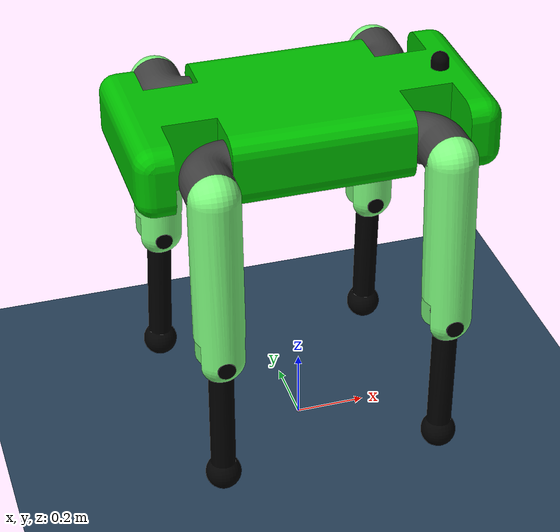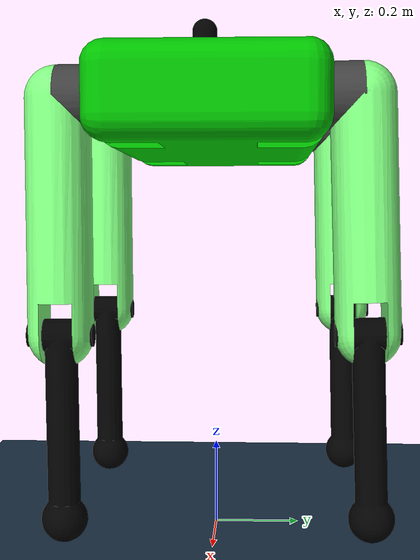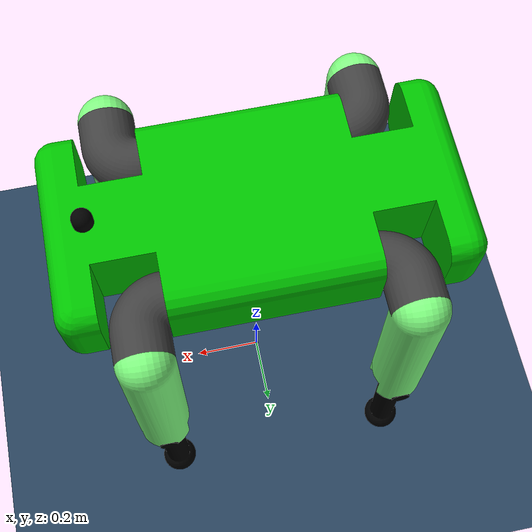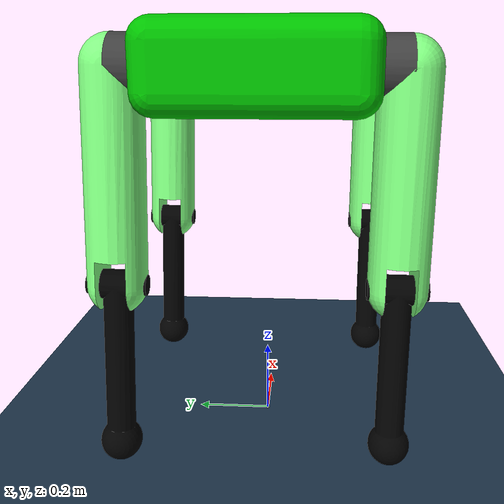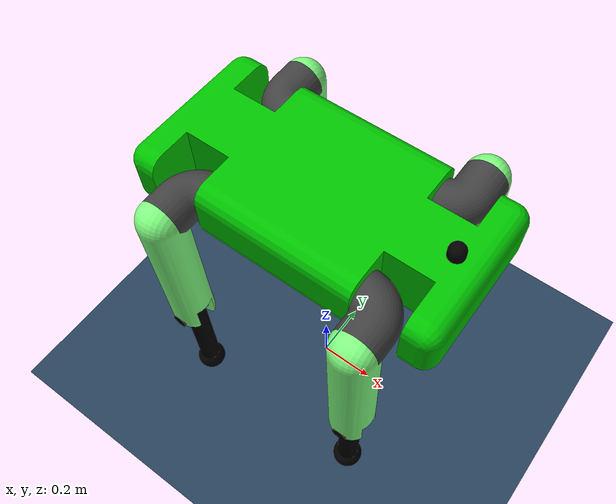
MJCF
<mujoco model="quad_robo">
  <option integrator="RK4" timestep="0.01" gravity="0 0 -9.8"/>
  <compiler angle="radian" meshdir="meshes" texturedir="meshes" autolimits="true"/>

  <statistic center="0 -0.1 0.2" extent="0.6" meansize="0.05"/>

  <visual>
    <headlight diffuse="0.6 0.6 0.6" ambient="0.3 0.3 0.3" specular="0 0 0"/>
    <rgba haze="0.15 0.25 0.35 1"/>
    <global azimuth="90" elevation="-20"/>
    <quality shadowsize="8192"/>
  </visual>

  <default>
     <default class="quadrobo">
      <mesh scale="1.0 1.0 1.0"/>
      <joint axis="0 1 0" frictionloss="0.1" armature="0.1"/>
      <position kp="150" inheritrange="1" dampratio="0.95" forcerange="-75 75"/>
      <default class="visual">
        <geom type="mesh" contype="0" conaffinity="0" density="0" group="2"/>
      </default>
      <default class="collision">
        <geom group="3" type="mesh"/>
        <default class="sphere_collision">
          <geom type="sphere" size="0.0006" rgba="1 0 0 1"/>
        </default>
      </default>
    </default>
  </default>

  <asset>
    <mesh class="quadrobo" name="body" file="body.STL" />
    <mesh class="quadrobo" name="camera" file="camera.STL" />
    <mesh class="quadrobo" name="back_right_thigh" file="back_right_thigh.STL" />
    <mesh class="quadrobo" name="back_right_leg" file="back_right_leg.STL" />
    <mesh class="quadrobo" name="back_right_shin" file="back_right_shin.STL" />
    <mesh class="quadrobo" name="back_left_thigh" file="back_left_thigh.STL" />
    <mesh class="quadrobo" name="back_left_leg" file="back_left_leg.STL" />
    <mesh class="quadrobo" name="back_left_shin" file="back_left_shin.STL" />
    <mesh class="quadrobo" name="front_left_thigh" file="front_left_thigh.STL" />
    <mesh class="quadrobo" name="front_left_leg" file="front_left_leg.STL" />
    <mesh class="quadrobo" name="front_left_shin" file="front_left_shin.STL" />
    <mesh class="quadrobo" name="front_right_thigh" file="front_right_thigh.STL" />
    <mesh class="quadrobo" name="front_right_leg" file="front_right_leg.STL" />
    <mesh class="quadrobo" name="front_right_shin" file="front_right_shin.STL" />

    <texture type="skybox" builtin="gradient" rgb1="0.3 0.5 0.7" rgb2="0 0 0" width="512" height="3072"/>
    <texture type="2d" name="groundplane" builtin="checker" mark="edge" rgb1="0.2 0.3 0.4" rgb2="0.1 0.2 0.3"
      markrgb="0.8 0.8 0.8" width="300" height="300"/>
    <material name="groundplane" texture="groundplane" texuniform="true" texrepeat="5 5" reflectance="0.2"/>
    <material name="metal" rgba="0.517 0.529 0.537 1"/>
  </asset>

  <worldbody>
    <light pos="0 0.1 2.5"/>
    <geom name="floor" size="20 20 0.05" type="plane" material="groundplane" pos="0 0 0"/>
    <site name="worldref" pos="0 0 0"/>
    <camera name="fixed" pos="0 -3.0 0.5" xyaxes="1 0 0 0 0 1" />
    <camera name="track" mode="trackcom" pos="0 -3.0 0.5" xyaxes="1 0 0 0 0 1" />
    <body name="root" pos="0 0 1.0" quat="1 0 0 0">
      <freejoint name="root" />
      <inertial pos="-1.46356336883091e-07 -3.51552591482118e-08 1.14116542881959e-08"
          mass="79.5537197619098"
          diaginertia="1.6409 6.2523 7.3877" />

      <site name="imu" size="0.01" pos="0 0 0" />
      <geom type="mesh" rgba="0 0.752941 0 1" mesh="body" class="visual" />
      <geom type="mesh" rgba="0 0.752941 0 1" mesh="body" class="collision"/>
      <geom pos="0.4 -0.005 0.095" quat="0.707107 0.707107 0 0" type="mesh" rgba="0 0 0 1" mesh="camera" class="visual" />
      <geom type="mesh" rgba="0 0 0 1" mesh="camera" pos="0.4 -0.005 0.095" quat="0.707107 0.707107 0 0" class="collision"/>
      <body name="back_right_thigh" pos="-0.24995 -0.18 0" quat="0 0 -0.709831 0.704372">
        <inertial pos="0.0629098 0 0.0554258" quat="0.993254 0 0.115957 0" mass="2.7702" diaginertia="0.0125596 0.0121647 0.00639203" />
        <joint name="back_right_thigh_joint" pos="0 0 0" axis="1 0 0" range="-1.57 1.57"  />
        <geom type="mesh" rgba="0.25098 0.25098 0.25098 1" mesh="back_right_thigh" class="visual" />
        <geom type="mesh" rgba="0.25098 0.25098 0.25098 1" mesh="back_right_thigh" class="collision"/>
        <body name="back_right_leg" pos="0.07005 0 0.070008" quat="-0.00392279 0.707097 0.00392277 0.707095">
          <inertial pos="0.0730353 -0.237418 6.51884e-09" quat="0.509262 0.490495 -0.509328 0.490563" mass="6.93817" diaginertia="0.145238 0.144942 0.0172124" />
          <joint name="back_right_leg_joint" pos="0 0 0" axis="1 0 0" range="-1.57 1.57"  />
          <geom type="mesh" rgba="0.501961 1 0.501961 1" mesh="back_right_leg" class="visual" />
          <geom type="mesh" rgba="0.501961 1 0.501961 1" mesh="back_right_leg" class="collision"/>
          <body name="back_right_shin" pos="0 -0.5 0" quat="0.00459773 0.999989 0 0">
            <inertial pos="0.0699917 0.206759 -2.45496e-07" quat="0.499992 0.499992 -0.500008 0.500008" mass="2.18909" diaginertia="0.0499442 0.0495545 0.00191161" />
            <joint name="back_right_shin_joint" pos="0 0 0" axis="1 0 0" range="-1.57 1.57"  />
            <geom type="mesh" rgba="0 0 0 1" mesh="back_right_shin" class="visual" />
            <geom type="mesh" rgba="0 0 0 1" mesh="back_right_shin" class="collision"/>
          </body>
        </body>
      </body>
      <body name="back_left_thigh" pos="-0.24995 0.18 0" quat="-2.62832e-06 -2.566e-06 0.698572 0.71554">
        <inertial pos="0.0629098 0 0.0554258" quat="0.993254 0 0.115957 0" mass="2.7702" diaginertia="0.0125596 0.0121647 0.00639203" />
        <joint name="back_left_thigh_joint" pos="0 0 0" axis="-1 0 0" range="-1.57 1.57"  />
        <geom type="mesh" rgba="0.25098 0.25098 0.25098 1" mesh="back_left_thigh" class="visual" />
        <geom type="mesh" rgba="0.25098 0.25098 0.25098 1" mesh="back_left_thigh" class="collision"/>
        <body name="back_left_leg" pos="0.07005 0 0.0700804" quat="0.707086 0.00546207 -0.707086 0.00546206">
          <inertial pos="0.0729632 -0.237418 -5.14056e-09" quat="0.509261 0.490494 -0.509329 0.490564" mass="6.93817" diaginertia="0.145238 0.144942 0.0172124" />
          <joint name="back_left_leg_joint" pos="0 0 0" axis="-1 0 0" range="-1.57 1.57"  />
          <geom type="mesh" rgba="0.501961 1 0.501961 1" mesh="back_left_leg" class="visual" />
          <geom type="mesh" rgba="0.501961 1 0.501961 1" mesh="back_left_leg" class="collision"/>
          <body name="back_left_shin" pos="0 -0.5 0" quat="0.00510775 -0.999987 0 0">
            <inertial pos="0.0699198 0.206759 2.62203e-07" quat="0.5 0.5 -0.5 0.5" mass="2.1891" diaginertia="0.0499443 0.0495545 0.00191162" />
            <joint name="back_left_shin_joint" pos="0 0 0" axis="-1 0 0" range="-1.57 1.57"  />
            <geom type="mesh" rgba="0 0 0 1" mesh="back_left_shin" class="visual" />
            <geom type="mesh" rgba="0 0 0 1" mesh="back_left_shin" class="collision"/>
          </body>
        </body>
      </body>
      <body name="front_left_thigh" pos="0.24995 0.18 0" quat="0.717563 -0.696494 0 0">
        <inertial pos="0.0629098 0 0.0554258" quat="0.993254 0 0.115957 0" mass="2.7702" diaginertia="0.0125596 0.0121647 0.00639203" />
        <joint name="front_left_thigh_joint" pos="0 0 0" axis="1 0 0" range="-1.57 1.57"  />
        <geom type="mesh" rgba="0.25098 0.25098 0.25098 1" mesh="front_left_thigh" class="visual" />
        <geom type="mesh" rgba="0.25098 0.25098 0.25098 1" mesh="front_left_thigh" class="collision"/>
        <body name="front_left_leg" pos="0.07005 0 0.0701239" quat="-0.00317285 -0.7071 0.00317286 -0.7071">
          <inertial pos="0.0729198 -0.237418 3.33459e-09" quat="0.509262 0.490495 -0.509328 0.490564" mass="6.93817" diaginertia="0.145238 0.144942 0.0172124" />
          <joint name="front_left_leg_joint" pos="0 0 0" axis="-1 0 0" range="-1.57 1.57"  />
          <geom type="mesh" rgba="0.501961 1 0.501961 1" mesh="front_left_leg" class="visual" />
          <geom type="mesh" rgba="0.501961 1 0.501961 1" mesh="front_left_leg" class="collision"/>
          <body name="front_left_shin" pos="0 -0.5 0" quat="0.0117301 -0.999931 0 0">
            <inertial pos="0.0698764 0.206759 1.34054e-07" quat="0.5 0.5 -0.5 0.5" mass="2.18909" diaginertia="0.0499442 0.0495545 0.00191161" />
            <joint name="front_left_shin_joint" pos="0 0 0" axis="-1 0 0" range="-1.57 1.57"  />
            <geom type="mesh" rgba="0 0 0 1" mesh="front_left_shin" class="visual" />
            <geom type="mesh" rgba="0 0 0 1" mesh="front_left_shin" class="collision"/>
          </body>
        </body>
      </body>
      <body name="front_right_thigh" pos="0.24995 -0.18 0" quat="0.705082 0.709126 0 0">
        <inertial pos="0.0629098 0 0.0554258" quat="0.993254 0 0.115957 0" mass="2.7702" diaginertia="0.0125596 0.0121647 0.00639203" />
        <joint name="front_right_thigh_joint" pos="0 0 0" axis="-1 0 0" range="-1.57 1.57"  />
        <geom type="mesh" rgba="0.25098 0.25098 0.25098 1" mesh="front_right_thigh" class="visual" />
        <geom type="mesh" rgba="0.25098 0.25098 0.25098 1" mesh="front_right_thigh" class="collision"/>
        <body name="front_right_leg" pos="0.07005 0 0.0700046" quat="0.707082 0.00589294 -0.707082 0.00589293">
          <inertial pos="0.073039 -0.237418 -3.69308e-09" quat="0.509261 0.490494 -0.509328 0.490564" mass="6.93817" diaginertia="0.145238 0.144942 0.0172124" />
          <joint name="front_right_leg_joint" pos="0 0 0" axis="1 0 0" range="-1.57 1.57"  />
          <geom type="mesh" rgba="0.501961 1 0.501961 1" mesh="front_right_leg" class="visual" />
          <geom type="mesh" rgba="0.501961 1 0.501961 1" mesh="front_right_leg" class="collision"/>
          <body name="front_right_shin" pos="0 -0.5 0" quat="0.0155385 0.999879 0 0">
            <inertial pos="0.0699954 0.206759 -1.74081e-07" quat="0.499992 0.499992 -0.500008 0.500008" mass="2.18909" diaginertia="0.0499442 0.0495545 0.00191161" />
            <joint name="front_right_shin_joint" pos="0 0 0" axis="1 0 0" range="-1.57 1.57"  />
            <geom type="mesh" rgba="0 0 0 1" mesh="front_right_shin" class="visual" />
            <geom type="mesh" rgba="0 0 0 1" mesh="front_right_shin" class="collision"/>
          </body>
        </body>
      </body>
    </body>
  </worldbody>

  <actuator>
    <position class="quadrobo" name="back_right_thigh_joint" joint="back_right_thigh_joint"  />
    <position class="quadrobo" name="back_right_leg_joint" joint="back_right_leg_joint"  />
    <position class="quadrobo" name="back_right_shin_joint" joint="back_right_shin_joint"  />
    <position class="quadrobo" name="back_left_thigh_joint" joint="back_left_thigh_joint"  />
    <position class="quadrobo" name="back_left_leg_joint" joint="back_left_leg_joint"  />
    <position class="quadrobo" name="back_left_shin_joint" joint="back_left_shin_joint"  />
    <position class="quadrobo" name="front_left_thigh_joint" joint="front_left_thigh_joint"  />
    <position class="quadrobo" name="front_left_leg_joint" joint="front_left_leg_joint"  />
    <position class="quadrobo" name="front_left_shin_joint" joint="front_left_shin_joint"  />
    <position class="quadrobo" name="front_right_thigh_joint" joint="front_right_thigh_joint"  />
    <position class="quadrobo" name="front_right_leg_joint" joint="front_right_leg_joint"  />
    <position class="quadrobo" name="front_right_shin_joint" joint="front_right_shin_joint"  />
  </actuator>

</mujoco>
